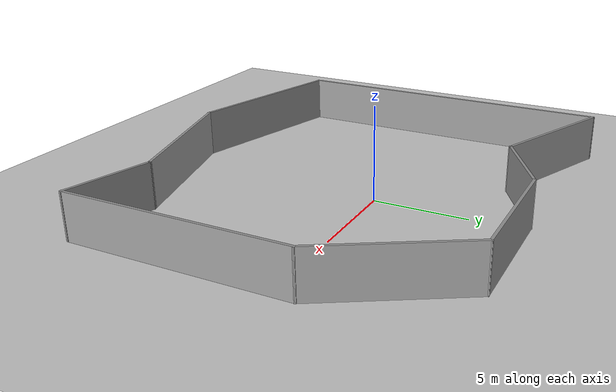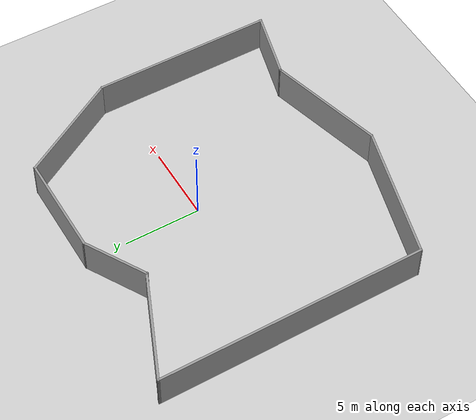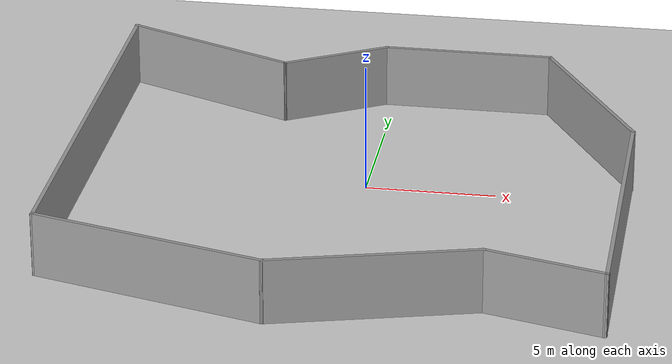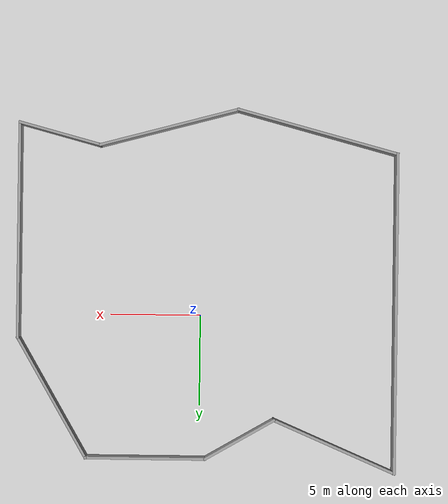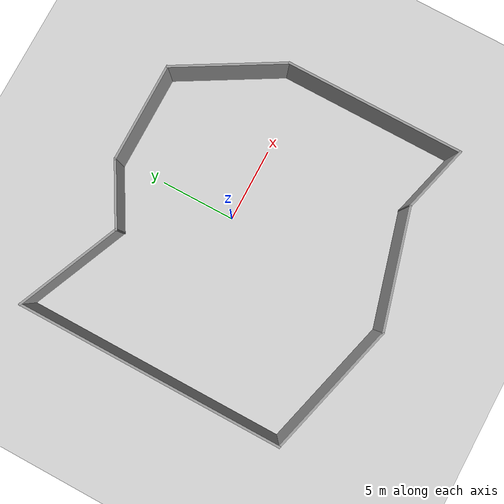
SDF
<sdf version="1.7">
 <world name="default">
  <light name="sun" type="directional">
   <pose>0 0 10 0 -0 0</pose>
   <diffuse>0.8 0.8 0.8 1</diffuse>
   <specular>0.2 0.2 0.2 1</specular>
   <attenuation>
    <range>1000</range>
    <constant>0.9</constant>
    <linear>0.01</linear>
    <quadratic>0.001</quadratic>
   </attenuation>
   <direction>-0.5 0.1 -0.9</direction>
   <spot><inner_angle>0</inner_angle><outer_angle>0</outer_angle><falloff>0</falloff></spot>
  </light>
  <model name="ground_plane">
   <static>1</static>
   <link name="link">
    <collision name="collision">
     <geometry><plane><normal>0 0 1</normal><size>100 100</size></plane></geometry>
     <surface><friction><ode><mu>100</mu><mu2>50</mu2></ode></friction></surface>
    </collision>
    <visual name="visual">
     <cast_shadows>0</cast_shadows>
     <geometry><plane><normal>0 0 1</normal><size>100 100</size></plane></geometry>
     <material>
      <script><uri>file://media/materials/scripts/gazebo.material</uri><name>Gazebo/Grey</name></script>
     </material>
    </visual>
   </link>
  </model>
  <gravity>0 0 -9.8</gravity>
  <magnetic_field>6e-06 2.3e-05 -4.2e-05</magnetic_field>
  <atmosphere type="adiabatic"/>
  <physics type="ode">
   <max_step_size>0.001</max_step_size>
   <real_time_factor>1</real_time_factor>
   <real_time_update_rate>1000</real_time_update_rate>
  </physics>
  <scene><ambient>0.4 0.4 0.4 1</ambient><background>0.7 0.7 0.7 1</background><shadows>1</shadows></scene>
  <audio><device>default</device></audio>
  <spherical_coordinates>
   <surface_model>EARTH_WGS84</surface_model>
   <latitude_deg>0</latitude_deg>
   <longitude_deg>0</longitude_deg>
   <elevation>0</elevation>
   <heading_deg>0</heading_deg>
  </spherical_coordinates>
  <model name="Untitled">
   <pose>-0.354556 -1.4073 0 0 -0 0</pose>
   <link name="Wall_0">
    <collision name="Wall_0_Collision">
     <geometry><box><size>17.75 0.15 2.5</size></box></geometry>
     <pose>0 0 1.25 0 -0 0</pose>
    </collision>
    <visual name="Wall_0_Visual">
     <pose>0 0 1.25 0 -0 0</pose>
     <geometry><box><size>17.75 0.15 2.5</size></box></geometry>
     <material>
      <script><uri>file://media/materials/scripts/gazebo.material</uri><name>Gazebo/Grey</name></script>
      <ambient>1 1 1 1</ambient>
     </material>
     <meta><layer>0</layer></meta>
    </visual>
    <pose>-10.4098 1.1743 0 0 -0 -1.5708</pose>
   </link>
   <link name="Wall_2">
    <collision name="Wall_2_Collision">
     <geometry><box><size>9.25 0.15 2.5</size></box></geometry>
     <pose>0 0 1.25 0 -0 0</pose>
    </collision>
    <visual name="Wall_2_Visual">
     <pose>0 0 1.25 0 -0 0</pose>
     <geometry><box><size>9.25 0.15 2.5</size></box></geometry>
     <material>
      <script><uri>file://media/materials/scripts/gazebo.material</uri><name>Gazebo/Grey</name></script>
      <ambient>1 1 1 1</ambient>
     </material>
     <meta><layer>0</layer></meta>
    </visual>
    <pose>-6.01485 -8.80333 0 0 -0 -0.261799</pose>
   </link>
   <link name="Wall_3">
    <collision name="Wall_3_Collision">
     <geometry><box><size>8 0.15 2.5</size></box></geometry>
     <pose>0 0 1.25 0 -0 0</pose>
    </collision>
    <visual name="Wall_3_Visual">
     <pose>0 0 1.25 0 -0 0</pose>
     <geometry><box><size>8 0.15 2.5</size></box></geometry>
     <material>
      <script><uri>file://media/materials/scripts/gazebo.material</uri><name>Gazebo/Grey</name></script>
      <ambient>1 1 1 1</ambient>
     </material>
     <meta><layer>0</layer></meta>
    </visual>
    <pose>2.17137 -8.96509 0 0 -0 0.261799</pose>
   </link>
   <link name="Wall_4">
    <collision name="Wall_4_Collision">
     <geometry><box><size>4.75 0.15 2.5</size></box></geometry>
     <pose>0 0 1.25 0 -0 0</pose>
    </collision>
    <visual name="Wall_4_Visual">
     <pose>0 0 1.25 0 -0 0</pose>
     <geometry><box><size>4.75 0.15 2.5</size></box></geometry>
     <material>
      <script><uri>file://media/materials/scripts/gazebo.material</uri><name>Gazebo/Grey</name></script>
      <ambient>1 1 1 1</ambient>
     </material>
     <meta><layer>0</layer></meta>
    </visual>
    <pose>8.18426 -8.54451 0 0 -0 -0.261799</pose>
   </link>
   <link name="Wall_5">
    <collision name="Wall_5_Collision">
     <geometry><box><size>12 0.15 2.5</size></box></geometry>
     <pose>0 0 1.25 0 -0 0</pose>
    </collision>
    <visual name="Wall_5_Visual">
     <pose>0 0 1.25 0 -0 0</pose>
     <geometry><box><size>12 0.15 2.5</size></box></geometry>
     <material>
      <script><uri>file://media/materials/scripts/gazebo.material</uri><name>Gazebo/Grey</name></script>
      <ambient>1 1 1 1</ambient>
     </material>
     <meta><layer>0</layer></meta>
    </visual>
    <pose>10.4059 -3.2148 0 0 -0 1.5708</pose>
   </link>
   <link name="Wall_6">
    <collision name="Wall_6_Collision">
     <geometry><box><size>7.75 0.15 2.5</size></box></geometry>
     <pose>0 0 1.25 0 -0 0</pose>
    </collision>
    <visual name="Wall_6_Visual">
     <pose>0 0 1.25 0 -0 0</pose>
     <geometry><box><size>7.75 0.15 2.5</size></box></geometry>
     <material>
      <script><uri>file://media/materials/scripts/gazebo.material</uri><name>Gazebo/Grey</name></script>
      <ambient>1 1 1 1</ambient>
     </material>
     <meta><layer>0</layer></meta>
    </visual>
    <pose>8.50588 6.0011 0 0 -0 2.0944</pose>
   </link>
   <link name="Wall_7">
    <collision name="Wall_7_Collision">
     <geometry><box><size>6.75 0.15 2.5</size></box></geometry>
     <pose>0 0 1.25 0 -0 0</pose>
    </collision>
    <visual name="Wall_7_Visual">
     <pose>0 0 1.25 0 -0 0</pose>
     <geometry><box><size>6.75 0.15 2.5</size></box></geometry>
     <material>
      <script><uri>file://media/materials/scripts/gazebo.material</uri><name>Gazebo/Grey</name></script>
      <ambient>1 1 1 1</ambient>
     </material>
     <meta><layer>0</layer></meta>
    </visual>
    <pose>3.30588 9.292 0 0 -0 3.14159</pose>
   </link>
   <link name="Wall_8">
    <collision name="Wall_8_Collision">
     <geometry><box><size>4.5 0.15 2.5</size></box></geometry>
     <pose>0 0 1.25 0 -0 0</pose>
    </collision>
    <visual name="Wall_8_Visual">
     <pose>0 0 1.25 0 -0 0</pose>
     <geometry><box><size>4.5 0.15 2.5</size></box></geometry>
     <material>
      <script><uri>file://media/materials/scripts/gazebo.material</uri><name>Gazebo/Grey</name></script>
      <ambient>1 1 1 1</ambient>
     </material>
     <meta><layer>0</layer></meta>
    </visual>
    <pose>-1.87772 8.2045 0 0 -0 -2.61799</pose>
   </link>
   <link name="Wall_9">
    <collision name="Wall_9_Collision">
     <geometry><box><size>7.38648 0.15 2.5</size></box></geometry>
     <pose>0 0 1.25 0 -0 0</pose>
    </collision>
    <visual name="Wall_9_Visual">
     <pose>0 0 1.25 0 -0 0</pose>
     <geometry><box><size>7.38648 0.15 2.5</size></box></geometry>
     <material>
      <script><uri>file://media/materials/scripts/gazebo.material</uri><name>Gazebo/Grey</name></script>
      <ambient>1 1 1 1</ambient>
     </material>
     <meta><layer>0</layer></meta>
    </visual>
    <pose>-7.08557 8.54565 0 0 -0 2.73569</pose>
   </link>
   <static>1</static>
  </model>
 </world>
</sdf>
